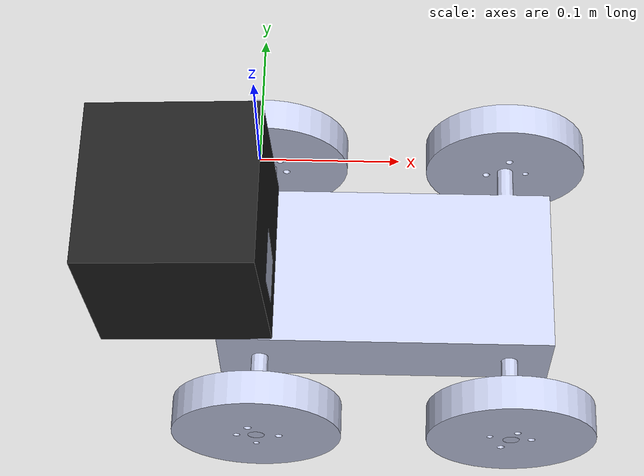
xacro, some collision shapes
<?xml version="1.0"?>
<robot
  name="Assem1">
  <link
    name="base_link">
    <inertial>
      <origin
        xyz="0.0867522788680148 0.123649981413385 0.155788603578813"
        rpy="0 0 0" />
      <mass
        value="0.01" />
      <inertia
        ixx="0.00128389796650896"
        ixy="0.000142573754277959"
        ixz="-1.41516805854222E-07"
        iyy="0.00466033813882864"
        iyz="7.87921145033593E-08"
        izz="0.00398303109686744" />
    </inertial>
    <visual>
      <origin
        xyz="0 0 0"
        rpy="0 0 0" />
      <geometry>
        <mesh
          filename="package://Assem1/meshes/base_link.STL" />
      </geometry>
      <material
        name="">
        <color
          rgba="0.792156862745098 0.819607843137255 0.933333333333333 1" />
      </material>
    </visual>
    <collision>
      <origin
        xyz="0 0 0"
        rpy="0 0 0" />
      <geometry>
        <mesh
          filename="package://Assem1/meshes/base_link.STL" />
      </geometry>
    </collision>
  </link>
  <link
    name="f_r">
    <inertial>
      <origin
        xyz="2.2084035391709E-06 6.87441889940521E-08 0.01"
        rpy="0 0 0" />
      <mass
        value="0.005" />
      <inertia
        ixx="0.000103234697684286"
        ixy="-1.6288947451477E-09"
        ixz="-1.26620912305708E-21"
        iyy="0.000103193401281464"
        iyz="-1.20704849217476E-22"
        izz="0.000196139815348653" />
    </inertial>
    <visual>
      <origin
        xyz="0 0 0"
        rpy="0 0 0" />
      <geometry>
        <mesh
          filename="package://Assem1/meshes/f_r.STL" />
      </geometry>
      <material
        name="">
        <color
          rgba="0.792156862745098 0.819607843137255 0.933333333333333 1" />
      </material>
    </visual>
    <collision>
      <origin
        xyz="0 0 0"
        rpy="0 0 0" />
      <geometry>
        <mesh
          filename="package://Assem1/meshes/f_r.STL" />
      </geometry>
    </collision>
  </link>
  <joint
    name="f_r_j"
    type="continuous">
    <origin
      xyz="0.014588869719991 -0.0557901966702706 0.122044991612646"
      rpy="-1.5707963267949 0.354672207789431 -3.14159265358979" />
    <parent
      link="base_link" />
    <child
      link="f_r" />
    <axis
      xyz="0 0 1" />
  </joint>
  <link
    name="f_l">
    <inertial>
      <origin
        xyz="2.20840353915702E-06 6.87441889801743E-08 0.00999999999999998"
        rpy="0 0 0" />
      <mass
        value="0.005" />
      <inertia
        ixx="0.000103234697684287"
        ixy="-1.62889474515787E-09"
        ixz="-2.16894083847529E-21"
        iyy="0.000103193401281464"
        iyz="-5.41940649078349E-22"
        izz="0.000196139815348654" />
    </inertial>
    <visual>
      <origin
        xyz="0 0 0"
        rpy="0 0 0" />
      <geometry>
        <mesh
          filename="package://Assem1/meshes/f_l.STL" />
      </geometry>
      <material
        name="">
        <color
          rgba="0.792156862745098 0.819607843137255 0.933333333333333 1" />
      </material>
    </visual>
    <collision>
      <origin
        xyz="0 0 0"
        rpy="0 0 0" />
      <geometry>
        <mesh
          filename="package://Assem1/meshes/f_l.STL" />
      </geometry>
    </collision>
  </link>
  <joint
    name="f_l_j"
    type="continuous">
    <origin
      xyz="0.0145888697199911 -0.235790196670271 0.122044991612646"
      rpy="1.5707963267949 0.47436621769193 0" />
    <parent
      link="base_link" />
    <child
      link="f_l" />
    <axis
      xyz="0 0 1" />
  </joint>
  <link
    name="b_r">
    <inertial>
      <origin
        xyz="2.20840353915008E-06 6.87441889801743E-08 0.01"
        rpy="0 0 0" />
      <mass
        value="0.5" />
      <inertia
        ixx="0.000103234697684287"
        ixy="-1.62889474514093E-09"
        ixz="6.40208129349314E-22"
        iyy="0.000103193401281464"
        iyz="-9.47949796496612E-22"
        izz="0.000196139815348654" />
    </inertial>
    <visual>
      <origin
        xyz="0 0 0"
        rpy="0 0 0" />
      <geometry>
        <mesh
          filename="package://Assem1/meshes/b_r.STL" />
      </geometry>
      <material
        name="">
        <color
          rgba="0.792156862745098 0.819607843137255 0.933333333333333 1" />
      </material>
    </visual>
    <collision>
      <origin
        xyz="0 0 0"
        rpy="0 0 0" />
      <geometry>
        <mesh
          filename="package://Assem1/meshes/b_r.STL" />
      </geometry>
    </collision>
  </link>
  <joint
    name="b_r_j"
    type="continuous">
    <origin
      xyz="0.164588869719991 -0.0557901966702706 0.122044991612646"
      rpy="1.5707963267949 -1.02223192677124 0" />
    <parent
      link="base_link" />
    <child
      link="b_r" />
    <axis
      xyz="0 0 1" />
  </joint>
  <link
    name="b_l">
    <inertial>
      <origin
        xyz="2.20840353912233E-06 6.87441889524187E-08 0.01"
        rpy="0 0 0" />
      <mass
        value="0.5" />
      <inertia
        ixx="0.000103234697684286"
        ixy="-1.6288947451477E-09"
        ixz="7.77414106919688E-22"
        iyy="0.000103193401281464"
        iyz="-7.9596571341626E-22"
        izz="0.000196139815348653" />
    </inertial>
    <visual>
      <origin
        xyz="0 0 0"
        rpy="0 0 0" />
      <geometry>
        <mesh
          filename="package://Assem1/meshes/b_l.STL" />
      </geometry>
      <material
        name="">
        <color
          rgba="0.792156862745098 0.819607843137255 0.933333333333333 1" />
      </material>
    </visual>
    <collision>
      <origin
        xyz="0 0 0"
        rpy="0 0 0" />
      <geometry>
        <mesh
          filename="package://Assem1/meshes/b_l.STL" />
      </geometry>
    </collision>
  </link>
  <joint
    name="b_l_j"
    type="continuous">
    <origin
      xyz="0.164588869719991 -0.235790196670271 0.122044991612646"
      rpy="-1.5707963267949 0.784203457300209 -3.14159265358979" />
    <parent
      link="base_link" />
    <child
      link="b_l" />
    <axis
      xyz="0 0 1" />
  </joint>
  <link
    name="lidar_stand">
    <inertial>
      <origin
        xyz="-0.0308065126142641 0 0.0400000000000003"
        rpy="0 0 0" />
      <mass
        value="0.233716814692821" />
      <inertia
        ixx="0.000142609697928001"
        ixy="-3.3881317890172E-21"
        ixz="1.44120992215522E-19"
        iyy="0.0003188028071053"
        iyz="1.49324319685339E-19"
        izz="0.000212114569360959" />
    </inertial>
    <visual>
      <origin
        xyz="0 0 0"
        rpy="0 0 0" />
      <geometry>
        <mesh
          filename="package://Assem1/meshes/lidar_stand.STL" />
      </geometry>
      <material
        name="">
        <color
          rgba="0.792156862745098 0.819607843137255 0.933333333333333 1" />
      </material>
    </visual>
    <collision>
      <origin
        xyz="0 0 0"
        rpy="0 0 0" />
      <geometry>
        <mesh
          filename="package://Assem1/meshes/lidar_stand.STL" />
      </geometry>
    </collision>
  </link>
  <joint
    name="lidar_stand_j"
    type="continuous">
    <origin
      xyz="0.00208886971999149 -0.115808040518744 0.190794991612646"
      rpy="1.5707963267949 -0.0536732445716119 0" />
    <parent
      link="base_link" />
    <child
      link="lidar_stand" />
    <axis
      xyz="0 0 1" />
  </joint>

  <transmission name="lidar_stand_j_trans">
    <type>transmission_interface/SimpleTransmission</type>
    <actuator name="$head_swivel_motor">
      <mechanicalReduction>1</mechanicalReduction>
    </actuator>
    <joint name="lidar_stand_j">
      <hardwareInterface>PositionJointInterface</hardwareInterface>
    </joint>
  </transmission>

  <!-- Gazebo plugin for ROS Control -->
  <gazebo>
    <plugin name="gazebo_ros_control" filename="libgazebo_ros_control.so">
      <robotNamespace>/</robotNamespace>
    </plugin>
  </gazebo>

<joint name="hokuyo_joint" type="fixed">
    <axis xyz="0 0 0" />
    <origin xyz="-0.03 0.02 0.0458" rpy="-1.570796 3.141592 0"/>
    <parent link="lidar_stand"/>
    <child link="hokuyo_link"/>
  </joint>

  <link name="hokuyo_link">
    <collision>
      <origin xyz="0 0 0" rpy="0 0 0"/>
      <geometry>
    <box size="0.1 0.1 0.1"/>
      </geometry>
    </collision>

    <visual>
      <origin xyz="0 0 0" rpy="0 0 0"/>
      <geometry>
        <mesh filename="package://Assem1/meshes/hokuyo.dae"/>
      </geometry>
    </visual>

    <inertial>
      <mass value="1e-5" />
      <origin xyz="0 0 0" rpy="0 0 0"/>
      <inertia ixx="1e-6" ixy="0" ixz="0" iyy="1e-6" iyz="0" izz="1e-6" />
    </inertial>
  </link>

  <gazebo>
  <plugin name="differential_drive_controller" filename="libgazebo_ros_diff_drive.so">
    <alwaysOn>true</alwaysOn>
    <legacyMode>false</legacyMode>
    <updateRate>40</updateRate>
    <leftJoint>b_l_j</leftJoint>
    <rightJoint>b_r_j</rightJoint>
    <wheelSeparation>2</wheelSeparation>
    <wheelDiameter>4</wheelDiameter>
    <torque>20</torque>
    <commandTopic>cmd_vel</commandTopic>
    <odometryTopic>odom</odometryTopic>
    <odometryFrame>odom</odometryFrame>
    <robotBaseFrame>base_link</robotBaseFrame>
  </plugin>

</gazebo>

<gazebo reference="hokuyo_link">
    <material>Gazebo/FlatBlack</material>
    <sensor type="ray" name="lds_lfcd_sensor">
      <pose>0 0 0 0 0 0</pose>
      <visualize>true</visualize>
      <update_rate>5</update_rate>
      <ray>
        <scan>
          <horizontal>
            <samples>720</samples>
            <resolution>1</resolution>
            <min_angle>-1</min_angle>
            <max_angle>1</max_angle>
          </horizontal>
        </scan>
        <range>
          <min>0.120</min>
          <max>2.5</max>
          <resolution>0.015</resolution>
        </range>
        <noise>
          <type>gaussian</type>
          <mean>0.0</mean>
          <stddev>0.01</stddev>
        </noise>
      </ray>
      <plugin name="gazebo_ros_lds_lfcd_controller" filename="libgazebo_ros_laser.so">
        <topicName>scan</topicName>
        <frameName>hokuyo_link</frameName>
      </plugin>
    </sensor>
  </gazebo>

</robot>
